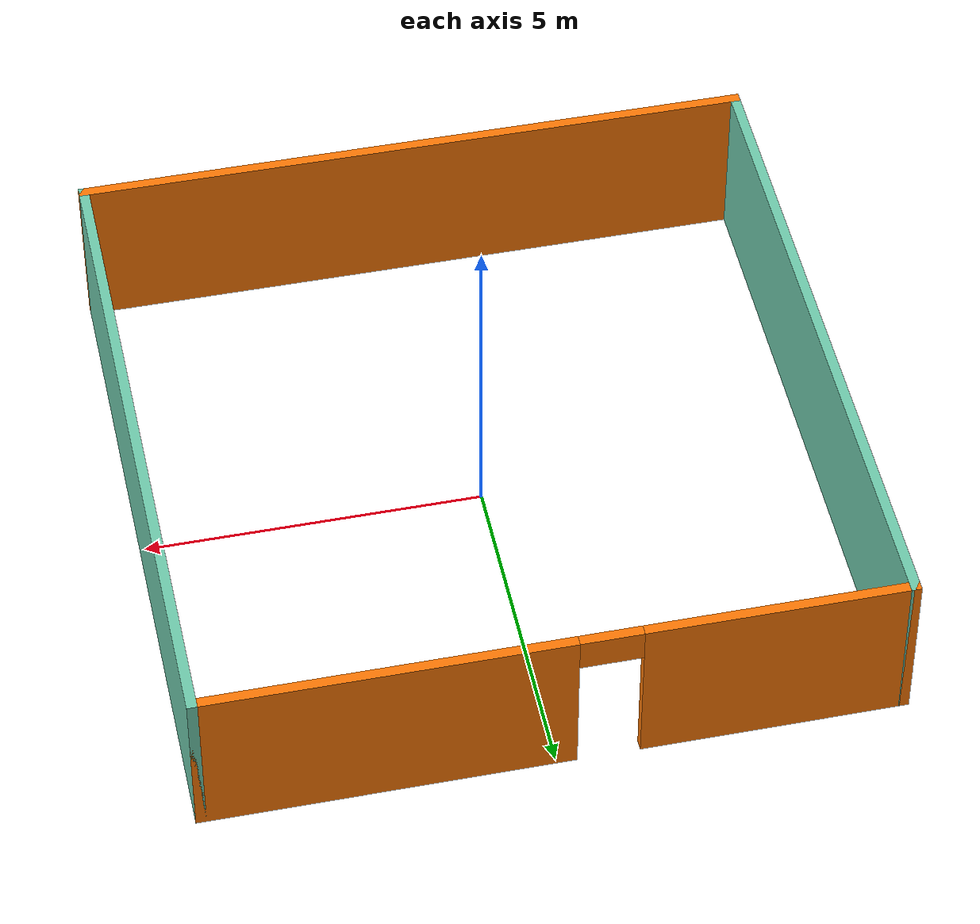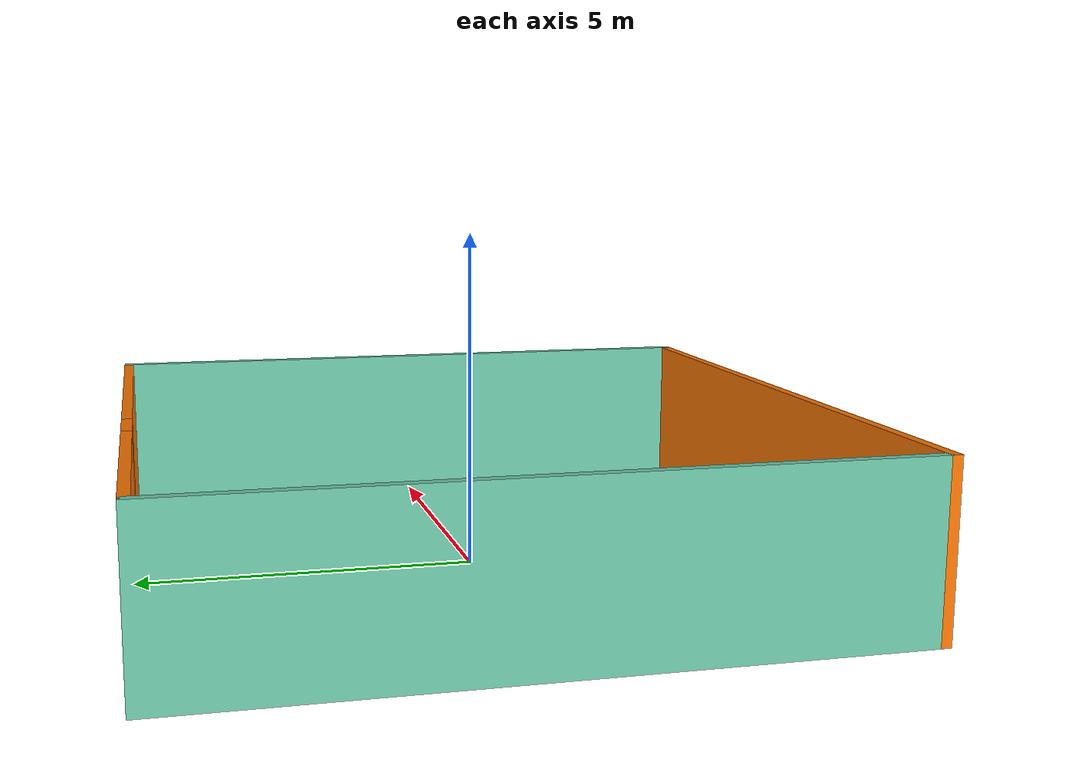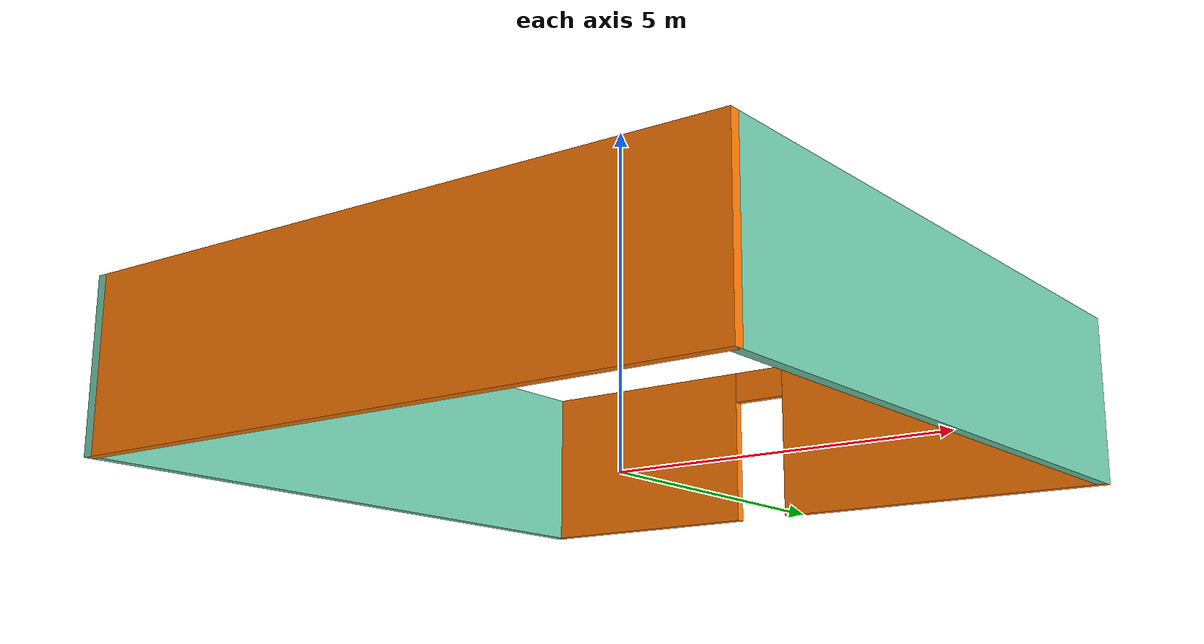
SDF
<?xml version='1.0'?>
<sdf version='1.6'>
  <model name='slam_box'>
    <pose frame=''>0 0 0 0 -0 0</pose>
    <link name='Wall_10'>
      <collision name='Wall_10_Collision'>
        <geometry>
          <box>
            <size>10.15 0.15 2.5</size>
          </box>
        </geometry>
        <pose frame=''>0 0 1.25 0 -0 0</pose>
      </collision>
      <visual name='Wall_10_Visual'>
        <pose frame=''>0 0 1.25 0 -0 0</pose>
        <geometry>
          <box>
            <size>10.15 0.15 2.5</size>
          </box>
        </geometry>
        <material>
          <script>
            <uri>file://media/materials/scripts/gazebo.material</uri>
            <name>Gazebo/Grey</name>
          </script>
          <ambient>0.996078 0.47451 0.0196078 1</ambient>
        </material>
        <meta>
          <layer>0</layer>
        </meta>
      </visual>
      <pose frame=''>0 -5 0 0 -0 3.14159</pose>
    </link>
    <link name='Wall_12'>
      <collision name='Wall_12_Collision'>
        <geometry>
          <box>
            <size>10.15 0.15 2.5</size>
          </box>
        </geometry>
        <pose frame=''>0 0 1.25 0 -0 0</pose>
      </collision>
      <visual name='Wall_12_Visual'>
        <pose frame=''>0 0 1.25 0 -0 0</pose>
        <geometry>
          <box>
            <size>10.15 0.15 2.5</size>
          </box>
        </geometry>
        <material>
          <script>
            <uri>file://media/materials/scripts/gazebo.material</uri>
            <name>Gazebo/Grey</name>
          </script>
          <ambient>0.435294 0.796078 0.67451 1</ambient>
        </material>
        <meta>
          <layer>0</layer>
        </meta>
      </visual>
      <pose frame=''>5 0 0 0 0 -1.5708</pose>
    </link>
    <link name='Wall_14'>
      <pose frame=''>0 5 0 0 -0 0</pose>
      <visual name='Wall_14_Visual_0'>
        <pose frame=''>-3.1341 0 1.25 0 -0 0</pose>
        <geometry>
          <box>
            <size>3.88181 0.15 2.5</size>
          </box>
        </geometry>
        <material>
          <script>
            <uri>file://media/materials/scripts/gazebo.material</uri>
            <name>Gazebo/Grey</name>
          </script>
          <ambient>0.996078 0.47451 0.0196078 1</ambient>
        </material>
        <meta>
          <layer>0</layer>
        </meta>
      </visual>
      <collision name='Wall_14_Collision_0'>
        <geometry>
          <box>
            <size>3.88181 0.15 2.5</size>
          </box>
        </geometry>
        <pose frame=''>-3.1341 0 1.25 0 -0 0</pose>
      </collision>
      <visual name='Wall_14_Visual_1'>
        <pose frame=''>2.3909 0 1.25 0 -0 0</pose>
        <geometry>
          <box>
            <size>5.36819 0.15 2.5</size>
          </box>
        </geometry>
        <material>
          <script>
            <uri>file://media/materials/scripts/gazebo.material</uri>
            <name>Gazebo/Grey</name>
          </script>
          <ambient>0.996078 0.47451 0.0196078 1</ambient>
        </material>
        <meta>
          <layer>0</layer>
        </meta>
      </visual>
      <collision name='Wall_14_Collision_1'>
        <geometry>
          <box>
            <size>5.36819 0.15 2.5</size>
          </box>
        </geometry>
        <pose frame=''>2.3909 0 1.25 0 -0 0</pose>
      </collision>
      <visual name='Wall_14_Visual_2'>
        <pose frame=''>-0.743192 0 2.25 0 -0 0</pose>
        <geometry>
          <box>
            <size>0.9 0.15 0.5</size>
          </box>
        </geometry>
        <material>
          <script>
            <uri>file://media/materials/scripts/gazebo.material</uri>
            <name>Gazebo/Grey</name>
          </script>
          <ambient>0.996078 0.47451 0.0196078 1</ambient>
        </material>
        <meta>
          <layer>0</layer>
        </meta>
      </visual>
      <collision name='Wall_14_Collision_2'>
        <geometry>
          <box>
            <size>0.9 0.15 0.5</size>
          </box>
        </geometry>
        <pose frame=''>-0.743192 0 2.25 0 -0 0</pose>
      </collision>
    </link>
    <link name='Wall_8'>
      <collision name='Wall_8_Collision'>
        <geometry>
          <box>
            <size>10.15 0.15 2.5</size>
          </box>
        </geometry>
        <pose frame=''>0 0 1.25 0 -0 0</pose>
      </collision>
      <visual name='Wall_8_Visual'>
        <pose frame=''>0 0 1.25 0 -0 0</pose>
        <geometry>
          <box>
            <size>10.15 0.15 2.5</size>
          </box>
        </geometry>
        <material>
          <script>
            <uri>file://media/materials/scripts/gazebo.material</uri>
            <name>Gazebo/Grey</name>
          </script>
          <ambient>0.435294 0.796078 0.67451 1</ambient>
        </material>
        <meta>
          <layer>0</layer>
        </meta>
      </visual>
      <pose frame=''>-5 0 0 0 -0 1.5708</pose>
    </link>
    <static>1</static>
  </model>
</sdf>
